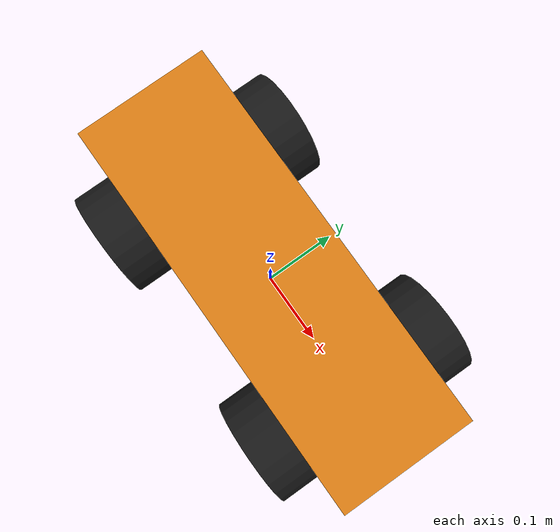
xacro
<robot name="robot" xmlns:xacro="http://wiki.ros.org/xacro">

    <xacro:property name="wheel_radius" value="0.08" />

    <xacro:property name="chassis_length" value="0.6" />
    <xacro:property name="chassis_width" value="0.2" />
    <xacro:property name="chassis_height" value="0.1" />

    <link name="base_link">
        <visual>
            <geometry>
                <box size="0.6 0.2 0.1" />
            </geometry>
            <origin xyz="0 0 0" rpy="0 0 0" />
        </visual>
        <inertial>
            <origin xyz="0 0 0"/>
            <mass value="6" />
            <inertia ixx="0.185" ixy="0" ixz="0" iyy="0.2" iyz="0" izz="0.025" />
        </inertial>
        <collision>
            <geometry>
                <box size="0.6 0.2 0.1" />
            </geometry>
            <origin xyz="0 0 0" rpy="0 0 0" />
        </collision>
    </link>

    <gazebo reference="base_link">
        <material>Gazebo/Orange</material>
    </gazebo>

    <gazebo reference="left_front_wheel">
        <material>Gazebo/Black</material>
    </gazebo>

    <gazebo reference="right_front_wheel">
        <material>Gazebo/Black</material>
    </gazebo>

    <gazebo reference="left_back_wheel">
        <material>Gazebo/Black</material>
    </gazebo>

    <gazebo reference="right_back_wheel">
        <material>Gazebo/Black</material>
    </gazebo>

    <link name="left_front_wheel">
        <visual>
            <geometry>
                <cylinder radius="0.08" length="0.06" />
            </geometry>
            <origin xyz="0 0 0" rpy="-1.5705 0 0" />
        </visual>
        <inertial>
            <origin xyz="0 0 0"/>
            <mass value="2" />
            <inertia ixx="3.8e-3" ixy="0" ixz="0" iyy="3.8e-3" iyz="0" izz="6.4e-3" />
        </inertial>
        <collision>
            <geometry>
                <cylinder radius="0.08" length="0.06" />
            </geometry>
            <origin xyz="0 0 0" rpy="1.5705 0 0" />
        </collision>
    </link>

    <joint name="left_front_wheel_joint" type="continuous">
        <parent link="base_link"/>
        <child link="left_front_wheel" />
        <origin xyz="0.18 0.13 -0.05" rpy="0 0 0" />
        <axis xyz="0 1 0" />
    </joint>

    <link name="right_front_wheel">
        <visual>
            <geometry>
                <cylinder radius="0.08" length="0.06" />
            </geometry>
            <origin xyz="0 0 0" rpy="-1.5705 0 0" />
        </visual>
        <inertial>
            <origin xyz="0 0 0"/>
            <mass value="2" />
            <inertia ixx="3.8e-3" ixy="0" ixz="0" iyy="3.8e-3" iyz="0" izz="6.4e-3" />
        </inertial>
        <collision>
            <geometry>
                <cylinder radius="0.1" length="0.06" />
            </geometry>
            <origin xyz="0 0 0" rpy="1.5705 0 0" />
        </collision>
    </link>

    <joint name="right_front_wheel_joint" type="continuous">
        <parent link="base_link"/>
        <child link="right_front_wheel" />
        <origin xyz="0.18 -0.13 -0.05" rpy="0 0 0" />
        <axis xyz="0 1 0" />
    </joint>

    <link name="left_back_wheel">
        <visual>
            <geometry>
                <cylinder radius="0.08" length="0.06" />
            </geometry>
            <origin xyz="0 0 0" rpy="-1.5705 0 0" />
        </visual>
        <inertial>
            <origin xyz="0 0 0"/>
            <mass value="2" />
            <inertia ixx="3.8e-3" ixy="0" ixz="0" iyy="3.8e-3" iyz="0" izz="6.4e-3" />
        </inertial>
        <collision>
            <geometry>
                <cylinder radius="0.1" length="0.06" />
            </geometry>
            <origin xyz="0 0 0" rpy="1.5705 0 0" />
        </collision>
    </link>

    <joint name="left_back_wheel_joint" type="continuous">
        <parent link="base_link"/>
        <child link="left_back_wheel" />
        <origin xyz="-0.18 0.13 -0.05" rpy="0 0 0" />
        <axis xyz="0 1 0" />
    </joint>

    <link name="right_back_wheel">
        <visual>
            <geometry>
                <cylinder radius="0.08" length="0.06" />
            </geometry>
            <origin xyz="0 0 0" rpy="-1.5705 0 0" />
        </visual>
        <inertial>
            <origin xyz="0 0 0"/>
            <mass value="2" />
            <inertia ixx="3.8e-3" ixy="0" ixz="0" iyy="3.8e-3" iyz="0" izz="6.4e-3" />
        </inertial>
        <collision>
            <geometry>
                <cylinder radius="0.1" length="0.06" />
            </geometry>
            <origin xyz="0 0 0" rpy="1.5705 0 0" />
        </collision>
    </link>

    <joint name="right_back_wheel_joint" type="continuous">
        <parent link="base_link"/>
        <child link="right_back_wheel" />
        <origin xyz="-0.18 -0.13 -0.05" rpy="0 0 0" />
        <axis xyz="0 1 0" />
    </joint>

    <xacro:macro name="joint_trans" params="joint_name">
        <!-- Transmission is important to link the joints and the controller -->
        <transmission name="${joint_name}_trans">
            <type>transmission_interface/SimpleTransmission</type>
            <joint name="${joint_name}_joint">
                <hardwareInterface>hardware_interface/VelocityJointInterface</hardwareInterface>
            </joint>
            <actuator name="${joint_name}_motor">
                <hardwareInterface>hardware_interface/VelocityJointInterface</hardwareInterface>
                <mechanicalReduction>1</mechanicalReduction>
            </actuator>
        </transmission>
    </xacro:macro>

    <xacro:joint_trans joint_name="left_front_wheel" />
    <xacro:joint_trans joint_name="left_back_wheel" />
    <xacro:joint_trans joint_name="right_front_wheel" />
    <xacro:joint_trans joint_name="right_back_wheel" />

    <gazebo>
        <plugin name="ros_control" filename="libgazebo_ros_control.so">
            <robotNamespace>/</robotNamespace>
        </plugin>
    </gazebo>

</robot>
